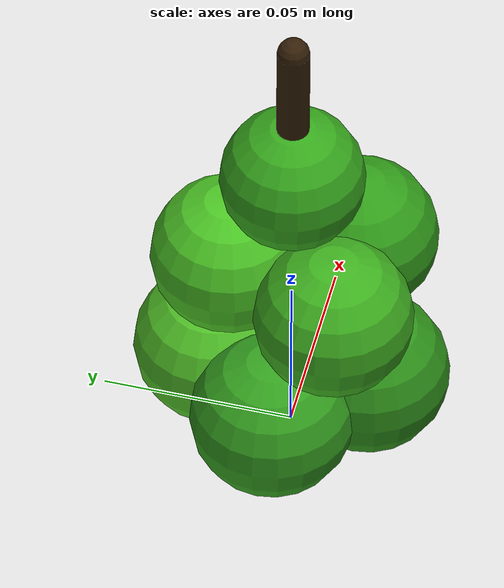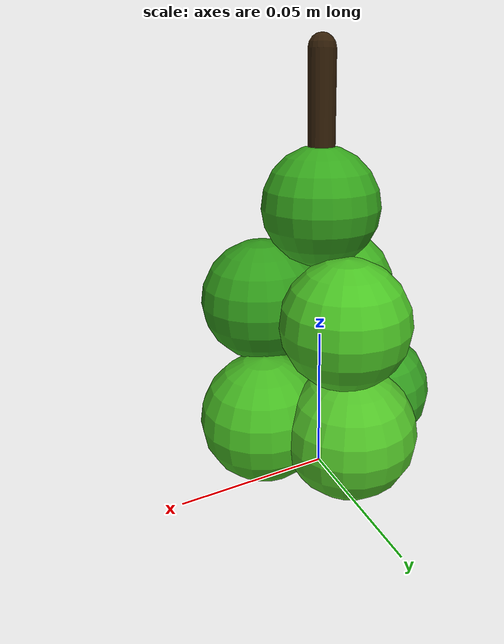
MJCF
<mujoco model="unitree_multitask_grapes">
  <asset/>
  <worldbody>
    <body>
      <body name="object">
        <geom class="visual" type="sphere" pos="-0.020 0 0.025" size="0.021" rgba="0.20 0.62 0.12 1"/>
        <geom class="visual" type="sphere" pos="0.020 0 0.025" size="0.021" rgba="0.27 0.72 0.13 1"/>
        <geom class="visual" type="sphere" pos="0 -0.020 0.025" size="0.021" rgba="0.18 0.57 0.10 1"/>
        <geom class="visual" type="sphere" pos="0 0.020 0.025" size="0.021" rgba="0.31 0.75 0.15 1"/>
        <geom class="visual" type="sphere" pos="-0.014 -0.014 0.060" size="0.020" rgba="0.24 0.68 0.12 1"/>
        <geom class="visual" type="sphere" pos="0.014 -0.014 0.060" size="0.020" rgba="0.19 0.61 0.10 1"/>
        <geom class="visual" type="sphere" pos="0 0.016 0.060" size="0.020" rgba="0.29 0.76 0.14 1"/>
        <geom class="visual" type="sphere" pos="0 0 0.092" size="0.018" rgba="0.21 0.65 0.11 1"/>
        <geom class="visual" type="capsule" pos="0 0 0.120" size="0.004 0.015" rgba="0.20 0.12 0.03 1"/>
        <geom class="collision" type="ellipsoid" pos="0 0 0.050" size="0.048 0.046 0.075"/>
      </body>
      <site rgba="0 0 0 0" size="0.005" pos="0 0 0" name="bottom_site"/>
      <site rgba="0 0 0 0" size="0.005" pos="0 0 0.135" name="top_site"/>
      <site rgba="0 0 0 0" size="0.005" pos="0.050 0.050 0.055" name="horizontal_radius_site"/>
    </body>
  </worldbody>
  <default>
    <default class="visual"><geom group="1" contype="0" conaffinity="0" density="75"/></default>
    <default class="collision"><geom group="0" rgba="1 1 1 0" density="75" friction="1.2 0.3 0.1"/></default>
  </default>
</mujoco>
